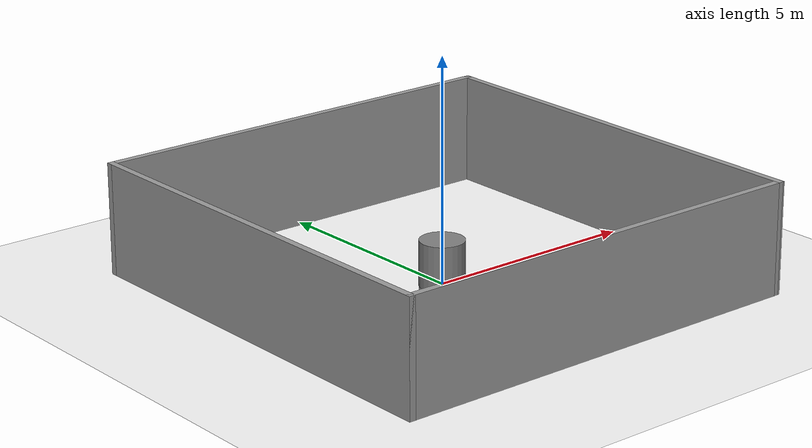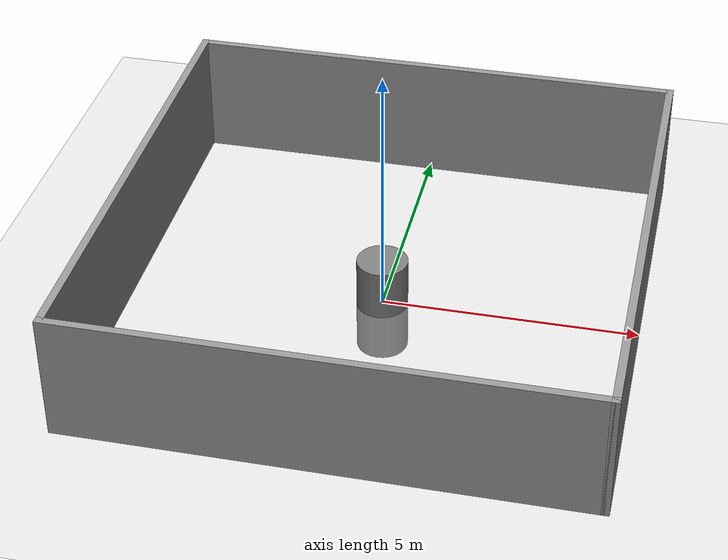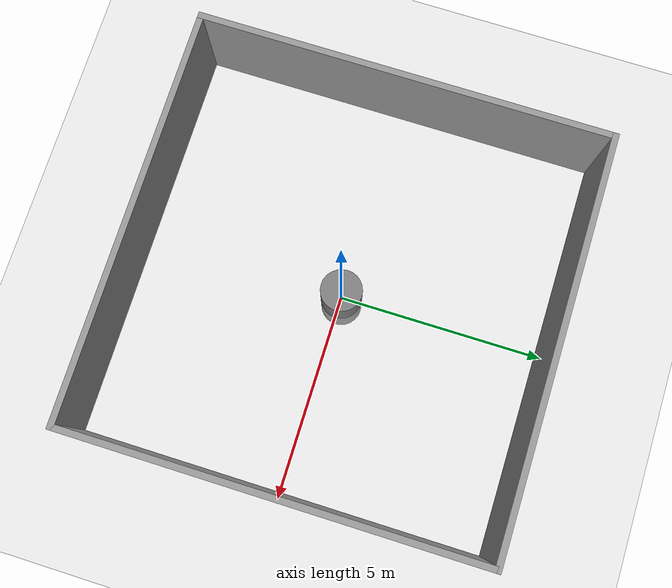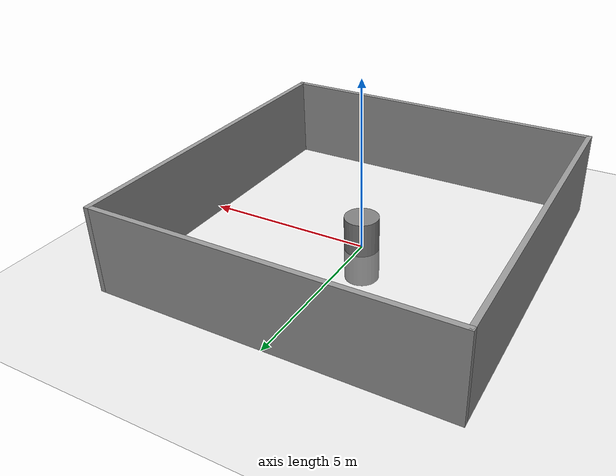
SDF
<sdf version="1.7">
 <world name="default">
  <model name="cylinder_05_05_1_1">
   <static>False</static>
   <link name="box_link">
    <collision name="box_collision">
     <geometry><cylinder><radius>0.5</radius><length>2</length></cylinder></geometry>
    </collision>
    <visual name="box_visual">
     <geometry><cylinder><radius>0.5</radius><length>2</length></cylinder></geometry>
     <material><ambient>0.5 0.5 0.5 1</ambient><diffuse>0.5 0.5 0.5 1</diffuse></material>
    </visual>
   </link>
   <plugin name="obstacle_motion" filename="libobstaclePathPlugin.so">
    <velocity>1.0</velocity>
    <orientation>false</orientation>
    <angular_velocity>0.0</angular_velocity>
    <max_velocity>3.0</max_velocity>
    <path><waypoint>3 -4 1</waypoint><waypoint>3 4 1</waypoint><waypoint>6 4 1</waypoint></path>
    <accelerations><a>1.0</a><a>0.5</a><a>0.8</a><a>0.0</a></accelerations>
   </plugin>
  </model>
  <light name="sun" type="directional">
   <pose>0 0 10 0 -0 0</pose>
   <diffuse>0.8 0.8 0.8 1</diffuse>
   <specular>0.2 0.2 0.2 1</specular>
   <attenuation>
    <range>1000</range>
    <constant>0.9</constant>
    <linear>0.01</linear>
    <quadratic>0.001</quadratic>
   </attenuation>
   <direction>-0.5 0.1 -0.9</direction>
   <spot><inner_angle>0</inner_angle><outer_angle>0</outer_angle><falloff>0</falloff></spot>
  </light>
  <model name="ground_plane">
   <static>1</static>
   <link name="link">
    <collision name="collision">
     <geometry><plane><normal>0 0 1</normal><size>100 100</size></plane></geometry>
     <surface><friction><ode><mu>100</mu><mu2>50</mu2></ode></friction></surface>
    </collision>
    <visual name="visual">
     <cast_shadows>0</cast_shadows>
     <geometry><plane><normal>0 0 1</normal><size>100 100</size></plane></geometry>
     <material>
      <script><uri>file://media/materials/scripts/gazebo.material</uri><name>Gazebo/Grey</name></script>
     </material>
    </visual>
   </link>
  </model>
  <gravity>0 0 -9.8</gravity>
  <magnetic_field>6e-06 2.3e-05 -4.2e-05</magnetic_field>
  <atmosphere type="adiabatic"/>
  <physics type="ode">
   <max_step_size>0.001</max_step_size>
   <real_time_factor>1</real_time_factor>
   <real_time_update_rate>1000</real_time_update_rate>
  </physics>
  <scene><ambient>0.4 0.4 0.4 1</ambient><background>0.7 0.7 0.7 1</background><shadows>1</shadows></scene>
  <spherical_coordinates>
   <surface_model>EARTH_WGS84</surface_model>
   <latitude_deg>0</latitude_deg>
   <longitude_deg>0</longitude_deg>
   <elevation>0</elevation>
   <heading_deg>0</heading_deg>
  </spherical_coordinates>
  <model name="10*10">
   <link name="Wall_10">
    <collision name="Wall_10_Collision">
     <geometry><box><size>10 0.15 2.5</size></box></geometry>
     <pose>0 0 1.25 0 -0 0</pose>
    </collision>
    <visual name="Wall_10_Visual">
     <pose>0 0 1.25 0 -0 0</pose>
     <geometry><box><size>10 0.15 2.5</size></box></geometry>
     <material>
      <script><uri>file://media/materials/scripts/gazebo.material</uri><name>Gazebo/Grey</name></script>
      <ambient>1 1 1 1</ambient>
     </material>
     <meta><layer>0</layer></meta>
    </visual>
    <pose>-0 4.925 0 0 -0 3.14159</pose>
   </link>
   <link name="Wall_11">
    <collision name="Wall_11_Collision">
     <geometry><box><size>10 0.15 2.5</size></box></geometry>
     <pose>0 0 1.25 0 -0 0</pose>
    </collision>
    <visual name="Wall_11_Visual">
     <pose>0 0 1.25 0 -0 0</pose>
     <geometry><box><size>10 0.15 2.5</size></box></geometry>
     <material>
      <script><uri>file://media/materials/scripts/gazebo.material</uri><name>Gazebo/Grey</name></script>
      <ambient>1 1 1 1</ambient>
     </material>
     <meta><layer>0</layer></meta>
    </visual>
    <pose>-4.925 0 0 0 -0 -1.5708</pose>
   </link>
   <link name="Wall_8">
    <collision name="Wall_8_Collision">
     <geometry><box><size>10 0.15 2.5</size></box></geometry>
     <pose>0 0 1.25 0 -0 0</pose>
    </collision>
    <visual name="Wall_8_Visual">
     <pose>0 0 1.25 0 -0 0</pose>
     <geometry><box><size>10 0.15 2.5</size></box></geometry>
     <material>
      <script><uri>file://media/materials/scripts/gazebo.material</uri><name>Gazebo/Grey</name></script>
      <ambient>1 1 1 1</ambient>
     </material>
     <meta><layer>0</layer></meta>
    </visual>
    <pose>-0 -4.925 0 0 -0 0</pose>
   </link>
   <link name="Wall_9">
    <collision name="Wall_9_Collision">
     <geometry><box><size>10 0.15 2.5</size></box></geometry>
     <pose>0 0 1.25 0 -0 0</pose>
    </collision>
    <visual name="Wall_9_Visual">
     <pose>0 0 1.25 0 -0 0</pose>
     <geometry><box><size>10 0.15 2.5</size></box></geometry>
     <material>
      <script><uri>file://media/materials/scripts/gazebo.material</uri><name>Gazebo/Grey</name></script>
      <ambient>1 1 1 1</ambient>
     </material>
     <meta><layer>0</layer></meta>
    </visual>
    <pose>4.925 0 0 0 -0 1.5708</pose>
   </link>
   <static>1</static>
  </model>
 </world>
</sdf>
